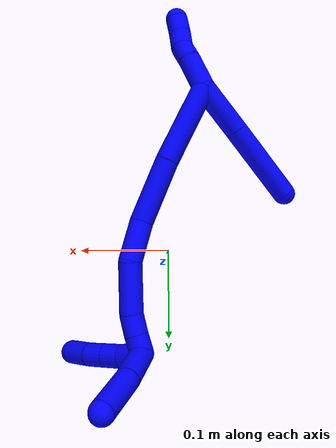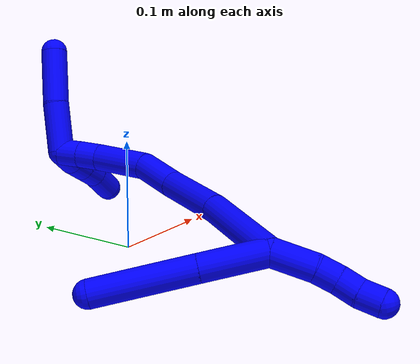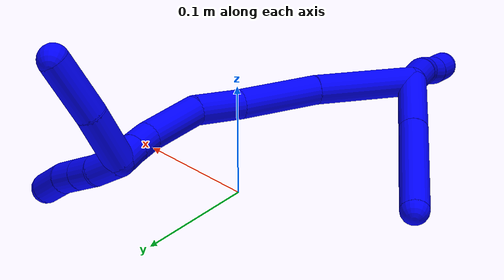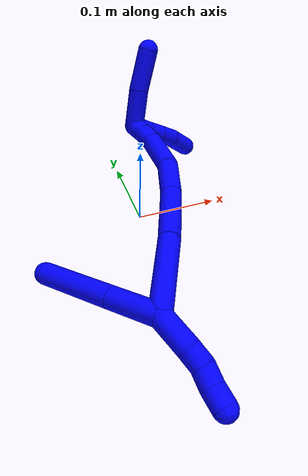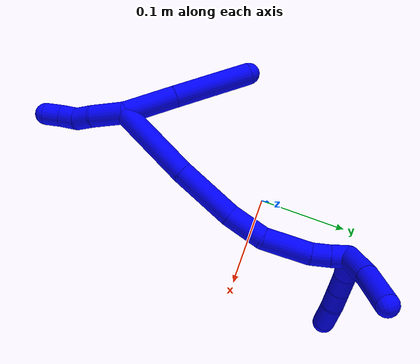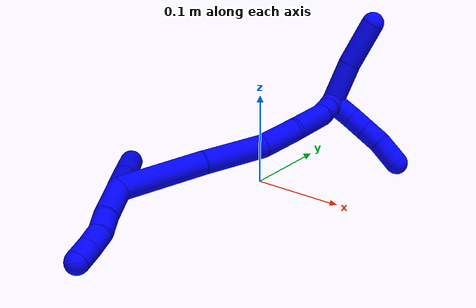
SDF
<sdf version="1.7">
 <world name="default">
  <model name="photoneo_s_sensor">
   <static>1</static>
   <pose>0 0 2 1.57079 1.57079 3.14159</pose>
   <link name="link">
    <inertial><mass>0.1</mass></inertial>
    <sensor name="sensor" type="depth">
     <update_rate>30</update_rate>
     <camera>
      <horizontal_fov>1.22</horizontal_fov>
      <image><width>1920</width><height>1200</height><format>B8G8R8</format></image>
      <clip><near>0.1</near><far>4</far></clip>
      <depth_camera><output>points</output></depth_camera>
     </camera>
     <plugin name="camera_plugin" filename="libgazebo_ros_depth_camera.so">
      <baseline>0.2</baseline>
      <alwaysOn>1</alwaysOn>
      <updateRate>0.0</updateRate>
      <cameraName>camera_ir</cameraName>
      <imageTopicName>/camera/color/image_raw</imageTopicName>
      <cameraInfoTopicName>/camera/color/camera_info</cameraInfoTopicName>
      <depthImageTopicName>/camera/depth/image_raw</depthImageTopicName>
      <depthImageCameraInfoTopicName>/camera/depth/camera_info</depthImageCameraInfoTopicName>
      <pointCloudTopicName>/camera/depth/points</pointCloudTopicName>
      <frameName>fr_optical</frameName>
      <pointCloudCutoff>0.1</pointCloudCutoff>
      <pointCloudCutoffMax>2.0</pointCloudCutoffMax>
      <distortionK1>0</distortionK1>
      <distortionK2>0</distortionK2>
      <distortionK3>0</distortionK3>
      <distortionT1>0</distortionT1>
      <distortionT2>0</distortionT2>
      <CxPrime>0</CxPrime>
      <Cx>0</Cx>
      <Cy>0</Cy>
      <focalLength>0</focalLength>
      <hackBaseline>0</hackBaseline>
     </plugin>
    </sensor>
   </link>
  </model>
  <model name="bin">
   <static>1</static>
   <link name="bottom">
    <collision name="collision-bottom">
     <pose>0 0 -0.01 0 -0 0</pose>
     <geometry><box><size>0.8 0.6 0.02</size></box></geometry>
     <surface>
      <friction><ode><mu>100</mu><mu2>100</mu2></ode></friction>
      <contact><collide_bitmask>65535</collide_bitmask></contact>
     </surface>
    </collision>
   </link>
   <link name="west_wall">
    <collision name="collision-west_wall">
     <pose>-0.41 0 0.1 0 -0 0</pose>
     <geometry><box><size>0.02 0.6 0.2</size></box></geometry>
     <surface>
      <friction><ode><mu>100</mu><mu2>100</mu2></ode></friction>
      <contact><collide_bitmask>65535</collide_bitmask></contact>
     </surface>
    </collision>
   </link>
   <link name="east_wall">
    <collision name="collision-east_wall">
     <pose>0.41 0 0.1 0 -0 0</pose>
     <geometry><box><size>0.02 0.6 0.2</size></box></geometry>
     <surface>
      <friction><ode><mu>100</mu><mu2>100</mu2></ode></friction>
      <contact><collide_bitmask>65535</collide_bitmask></contact>
     </surface>
    </collision>
   </link>
   <link name="south_wall">
    <collision name="collision-south_wall">
     <pose>0 -0.31 0.1 0 -0 0</pose>
     <geometry><box><size>0.8 0.02 0.2</size></box></geometry>
     <surface>
      <friction><ode><mu>100</mu><mu2>100</mu2></ode></friction>
      <contact><collide_bitmask>65535</collide_bitmask></contact>
     </surface>
    </collision>
   </link>
   <link name="north_wall">
    <collision name="collision-north_wall">
     <pose>0 0.31 0.1 0 -0 0</pose>
     <geometry><box><size>0.8 0.02 0.2</size></box></geometry>
     <surface>
      <friction><ode><mu>100</mu><mu2>100</mu2></ode></friction>
      <contact><collide_bitmask>65535</collide_bitmask></contact>
     </surface>
    </collision>
   </link>
  </model>
  <model name="1">
   <static>0</static>
   <link name="1">
    <collision name="collision-cylinder-e_1_2_8">
     <pose>-0.000724 -0.001752 -0.029352 3.08196 -0.024627 -0.78309</pose>
     <geometry><cylinder><radius>0.0125</radius><length>0.058827</length></cylinder></geometry>
     <surface>
      <friction><ode><mu>1.16</mu><mu2>1.16</mu2><slip1>0</slip1><slip2>0</slip2></ode></friction>
      <contact><ode><kp>1e+06</kp><kd>1</kd><max_vel>0</max_vel><min_depth>0.001</min_depth></ode></contact>
     </surface>
    </collision>
    <visual name="visual-cylinder-e_1_2_8">
     <pose>-0.000724 -0.001752 -0.029352 3.08196 -0.024627 -0.78309</pose>
     <geometry><cylinder><radius>0.0125</radius><length>0.058827</length></cylinder></geometry>
     <material><ambient>0 0 1 1</ambient></material>
    </visual>
    <collision name="collision-cylinder-e_2_8_6">
     <pose>-0.002132 -0.006192 -0.104207 3.0826 -0.014995 -0.497709</pose>
     <geometry><cylinder><radius>0.0125</radius><length>0.091173</length></cylinder></geometry>
     <surface>
      <friction><ode><mu>1.16</mu><mu2>1.16</mu2><slip1>0</slip1><slip2>0</slip2></ode></friction>
      <contact><ode><kp>1e+06</kp><kd>1</kd><max_vel>0</max_vel><min_depth>0.001</min_depth></ode></contact>
     </surface>
    </collision>
    <visual name="visual-cylinder-e_2_8_6">
     <pose>-0.002132 -0.006192 -0.104207 3.0826 -0.014995 -0.497709</pose>
     <geometry><cylinder><radius>0.0125</radius><length>0.091173</length></cylinder></geometry>
     <material><ambient>0 0 1 1</ambient></material>
    </visual>
    <collision name="collision-cylinder-e_1_2_9">
     <pose>0.00265 -0.009238 0.016943 0.499201 0.136447 0.034833</pose>
     <geometry><cylinder><radius>0.0125</radius><length>0.038957</length></cylinder></geometry>
     <surface>
      <friction><ode><mu>1.16</mu><mu2>1.16</mu2><slip1>0</slip1><slip2>0</slip2></ode></friction>
      <contact><ode><kp>1e+06</kp><kd>1</kd><max_vel>0</max_vel><min_depth>0.001</min_depth></ode></contact>
     </surface>
    </collision>
    <visual name="visual-cylinder-e_1_2_9">
     <pose>0.00265 -0.009238 0.016943 0.499201 0.136447 0.034833</pose>
     <geometry><cylinder><radius>0.0125</radius><length>0.038957</length></cylinder></geometry>
     <material><ambient>0 0 1 1</ambient></material>
    </visual>
    <collision name="collision-cylinder-e_2_9_10">
     <pose>0.007979 -0.024075 0.041832 0.613731 0.269005 0.085706</pose>
     <geometry><cylinder><radius>0.0125</radius><length>0.020168</length></cylinder></geometry>
     <surface>
      <friction><ode><mu>1.16</mu><mu2>1.16</mu2><slip1>0</slip1><slip2>0</slip2></ode></friction>
      <contact><ode><kp>1e+06</kp><kd>1</kd><max_vel>0</max_vel><min_depth>0.001</min_depth></ode></contact>
     </surface>
    </collision>
    <visual name="visual-cylinder-e_2_9_10">
     <pose>0.007979 -0.024075 0.041832 0.613731 0.269005 0.085706</pose>
     <geometry><cylinder><radius>0.0125</radius><length>0.020168</length></cylinder></geometry>
     <material><ambient>0 0 1 1</ambient></material>
    </visual>
    <collision name="collision-cylinder-e_3_10_11">
     <pose>0.010726 -0.036708 0.056968 0.77456 0.006633 0.002706</pose>
     <geometry><cylinder><radius>0.0125</radius><length>0.020116</length></cylinder></geometry>
     <surface>
      <friction><ode><mu>1.16</mu><mu2>1.16</mu2><slip1>0</slip1><slip2>0</slip2></ode></friction>
      <contact><ode><kp>1e+06</kp><kd>1</kd><max_vel>0</max_vel><min_depth>0.001</min_depth></ode></contact>
     </surface>
    </collision>
    <visual name="visual-cylinder-e_3_10_11">
     <pose>0.010726 -0.036708 0.056968 0.77456 0.006633 0.002706</pose>
     <geometry><cylinder><radius>0.0125</radius><length>0.020116</length></cylinder></geometry>
     <material><ambient>0 0 1 1</ambient></material>
    </visual>
    <collision name="collision-cylinder-e_4_11_5">
     <pose>0.010227 -0.049651 0.072672 0.6066 -0.054572 -0.017083</pose>
     <geometry><cylinder><radius>0.0125</radius><length>0.020759</length></cylinder></geometry>
     <surface>
      <friction><ode><mu>1.16</mu><mu2>1.16</mu2><slip1>0</slip1><slip2>0</slip2></ode></friction>
      <contact><ode><kp>1e+06</kp><kd>1</kd><max_vel>0</max_vel><min_depth>0.001</min_depth></ode></contact>
     </surface>
    </collision>
    <visual name="visual-cylinder-e_4_11_5">
     <pose>0.010227 -0.049651 0.072672 0.6066 -0.054572 -0.017083</pose>
     <geometry><cylinder><radius>0.0125</radius><length>0.020759</length></cylinder></geometry>
     <material><ambient>0 0 1 1</ambient></material>
    </visual>
    <collision name="collision-cylinder-e_1_2_12">
     <pose>0.025167 0.032637 -0.019979 -2.12011 0.581748 -0.981359</pose>
     <geometry><cylinder><radius>0.0125</radius><length>0.091602</length></cylinder></geometry>
     <surface>
      <friction><ode><mu>1.16</mu><mu2>1.16</mu2><slip1>0</slip1><slip2>0</slip2></ode></friction>
      <contact><ode><kp>1e+06</kp><kd>1</kd><max_vel>0</max_vel><min_depth>0.001</min_depth></ode></contact>
     </surface>
    </collision>
    <visual name="visual-cylinder-e_1_2_12">
     <pose>0.025167 0.032637 -0.019979 -2.12011 0.581748 -0.981359</pose>
     <geometry><cylinder><radius>0.0125</radius><length>0.091602</length></cylinder></geometry>
     <material><ambient>0 0 1 1</ambient></material>
    </visual>
    <collision name="collision-cylinder-e_2_12_13">
     <pose>0.070073 0.088241 -0.057796 -2.23114 0.596349 -1.12128</pose>
     <geometry><cylinder><radius>0.0125</radius><length>0.070292</length></cylinder></geometry>
     <surface>
      <friction><ode><mu>1.16</mu><mu2>1.16</mu2><slip1>0</slip1><slip2>0</slip2></ode></friction>
      <contact><ode><kp>1e+06</kp><kd>1</kd><max_vel>0</max_vel><min_depth>0.001</min_depth></ode></contact>
     </surface>
    </collision>
    <visual name="visual-cylinder-e_2_12_13">
     <pose>0.070073 0.088241 -0.057796 -2.23114 0.596349 -1.12128</pose>
     <geometry><cylinder><radius>0.0125</radius><length>0.070292</length></cylinder></geometry>
     <material><ambient>0 0 1 1</ambient></material>
    </visual>
    <collision name="collision-cylinder-e_3_13_14">
     <pose>0.098523 0.126734 -0.08812 -2.24811 0.412175 -0.822983</pose>
     <geometry><cylinder><radius>0.0125</radius><length>0.043491</length></cylinder></geometry>
     <surface>
      <friction><ode><mu>1.16</mu><mu2>1.16</mu2><slip1>0</slip1><slip2>0</slip2></ode></friction>
      <contact><ode><kp>1e+06</kp><kd>1</kd><max_vel>0</max_vel><min_depth>0.001</min_depth></ode></contact>
     </surface>
    </collision>
    <visual name="visual-cylinder-e_3_13_14">
     <pose>0.098523 0.126734 -0.08812 -2.24811 0.412175 -0.822983</pose>
     <geometry><cylinder><radius>0.0125</radius><length>0.043491</length></cylinder></geometry>
     <material><ambient>0 0 1 1</ambient></material>
    </visual>
    <collision name="collision-cylinder-e_4_14_15">
     <pose>0.116143 0.1551 -0.122303 -2.60724 0.339654 -1.11931</pose>
     <geometry><cylinder><radius>0.0125</radius><length>0.053479</length></cylinder></geometry>
     <surface>
      <friction><ode><mu>1.16</mu><mu2>1.16</mu2><slip1>0</slip1><slip2>0</slip2></ode></friction>
      <contact><ode><kp>1e+06</kp><kd>1</kd><max_vel>0</max_vel><min_depth>0.001</min_depth></ode></contact>
     </surface>
    </collision>
    <visual name="visual-cylinder-e_4_14_15">
     <pose>0.116143 0.1551 -0.122303 -2.60724 0.339654 -1.11931</pose>
     <geometry><cylinder><radius>0.0125</radius><length>0.053479</length></cylinder></geometry>
     <material><ambient>0 0 1 1</ambient></material>
    </visual>
    <collision name="collision-cylinder-e_5_15_16">
     <pose>0.126665 0.17223 -0.153511 -2.71786 0.153444 -0.686488</pose>
     <geometry><cylinder><radius>0.0125</radius><length>0.021114</length></cylinder></geometry>
     <surface>
      <friction><ode><mu>1.16</mu><mu2>1.16</mu2><slip1>0</slip1><slip2>0</slip2></ode></friction>
      <contact><ode><kp>1e+06</kp><kd>1</kd><max_vel>0</max_vel><min_depth>0.001</min_depth></ode></contact>
     </surface>
    </collision>
    <visual name="visual-cylinder-e_5_15_16">
     <pose>0.126665 0.17223 -0.153511 -2.71786 0.153444 -0.686488</pose>
     <geometry><cylinder><radius>0.0125</radius><length>0.021114</length></cylinder></geometry>
     <material><ambient>0 0 1 1</ambient></material>
    </visual>
    <collision name="collision-cylinder-e_6_16_1">
     <pose>0.129422 0.180156 -0.172277 -2.76722 0.114432 -0.587342</pose>
     <geometry><cylinder><radius>0.0125</radius><length>0.020022</length></cylinder></geometry>
     <surface>
      <friction><ode><mu>1.16</mu><mu2>1.16</mu2><slip1>0</slip1><slip2>0</slip2></ode></friction>
      <contact><ode><kp>1e+06</kp><kd>1</kd><max_vel>0</max_vel><min_depth>0.001</min_depth></ode></contact>
     </surface>
    </collision>
    <visual name="visual-cylinder-e_6_16_1">
     <pose>0.129422 0.180156 -0.172277 -2.76722 0.114432 -0.587342</pose>
     <geometry><cylinder><radius>0.0125</radius><length>0.020022</length></cylinder></geometry>
     <material><ambient>0 0 1 1</ambient></material>
    </visual>
    <collision name="collision-cylinder-e_1_1_17">
     <pose>0.123494 0.206609 -0.180233 -1.51386 -0.30008 0.28369</pose>
     <geometry><cylinder><radius>0.0125</radius><length>0.047843</length></cylinder></geometry>
     <surface>
      <friction><ode><mu>1.16</mu><mu2>1.16</mu2><slip1>0</slip1><slip2>0</slip2></ode></friction>
      <contact><ode><kp>1e+06</kp><kd>1</kd><max_vel>0</max_vel><min_depth>0.001</min_depth></ode></contact>
     </surface>
    </collision>
    <visual name="visual-cylinder-e_1_1_17">
     <pose>0.123494 0.206609 -0.180233 -1.51386 -0.30008 0.28369</pose>
     <geometry><cylinder><radius>0.0125</radius><length>0.047843</length></cylinder></geometry>
     <material><ambient>0 0 1 1</ambient></material>
    </visual>
    <collision name="collision-cylinder-e_2_17_4">
     <pose>0.11127 0.254826 -0.176055 -1.45799 -0.198886 0.177745</pose>
     <geometry><cylinder><radius>0.0125</radius><length>0.052157</length></cylinder></geometry>
     <surface>
      <friction><ode><mu>1.16</mu><mu2>1.16</mu2><slip1>0</slip1><slip2>0</slip2></ode></friction>
      <contact><ode><kp>1e+06</kp><kd>1</kd><max_vel>0</max_vel><min_depth>0.001</min_depth></ode></contact>
     </surface>
    </collision>
    <visual name="visual-cylinder-e_2_17_4">
     <pose>0.11127 0.254826 -0.176055 -1.45799 -0.198886 0.177745</pose>
     <geometry><cylinder><radius>0.0125</radius><length>0.052157</length></cylinder></geometry>
     <material><ambient>0 0 1 1</ambient></material>
    </visual>
    <collision name="collision-cylinder-e_1_1_18">
     <pose>0.143857 0.184051 -0.17926 -0.113062 1.40028 -0.095287</pose>
     <geometry><cylinder><radius>0.0125</radius><length>0.026976</length></cylinder></geometry>
     <surface>
      <friction><ode><mu>1.16</mu><mu2>1.16</mu2><slip1>0</slip1><slip2>0</slip2></ode></friction>
      <contact><ode><kp>1e+06</kp><kd>1</kd><max_vel>0</max_vel><min_depth>0.001</min_depth></ode></contact>
     </surface>
    </collision>
    <visual name="visual-cylinder-e_1_1_18">
     <pose>0.143857 0.184051 -0.17926 -0.113062 1.40028 -0.095287</pose>
     <geometry><cylinder><radius>0.0125</radius><length>0.026976</length></cylinder></geometry>
     <material><ambient>0 0 1 1</ambient></material>
    </visual>
    <collision name="collision-cylinder-e_2_18_19">
     <pose>0.167219 0.18431 -0.173236 2.8e-05 1.21429 2e-05</pose>
     <geometry><cylinder><radius>0.0125</radius><length>0.021489</length></cylinder></geometry>
     <surface>
      <friction><ode><mu>1.16</mu><mu2>1.16</mu2><slip1>0</slip1><slip2>0</slip2></ode></friction>
      <contact><ode><kp>1e+06</kp><kd>1</kd><max_vel>0</max_vel><min_depth>0.001</min_depth></ode></contact>
     </surface>
    </collision>
    <visual name="visual-cylinder-e_2_18_19">
     <pose>0.167219 0.18431 -0.173236 2.8e-05 1.21429 2e-05</pose>
     <geometry><cylinder><radius>0.0125</radius><length>0.021489</length></cylinder></geometry>
     <material><ambient>0 0 1 1</ambient></material>
    </visual>
    <collision name="collision-cylinder-e_3_19_20">
     <pose>0.187546 0.184299 -0.16571 0.002816 1.2181 0.001964</pose>
     <geometry><cylinder><radius>0.0125</radius><length>0.021862</length></cylinder></geometry>
     <surface>
      <friction><ode><mu>1.16</mu><mu2>1.16</mu2><slip1>0</slip1><slip2>0</slip2></ode></friction>
      <contact><ode><kp>1e+06</kp><kd>1</kd><max_vel>0</max_vel><min_depth>0.001</min_depth></ode></contact>
     </surface>
    </collision>
    <visual name="visual-cylinder-e_3_19_20">
     <pose>0.187546 0.184299 -0.16571 0.002816 1.2181 0.001964</pose>
     <geometry><cylinder><radius>0.0125</radius><length>0.021862</length></cylinder></geometry>
     <material><ambient>0 0 1 1</ambient></material>
    </visual>
    <collision name="collision-cylinder-e_4_20_3">
     <pose>0.211837 0.181894 -0.157754 0.520137 1.24012 0.375508</pose>
     <geometry><cylinder><radius>0.0125</radius><length>0.029673</length></cylinder></geometry>
     <surface>
      <friction><ode><mu>1.16</mu><mu2>1.16</mu2><slip1>0</slip1><slip2>0</slip2></ode></friction>
      <contact><ode><kp>1e+06</kp><kd>1</kd><max_vel>0</max_vel><min_depth>0.001</min_depth></ode></contact>
     </surface>
    </collision>
    <visual name="visual-cylinder-e_4_20_3">
     <pose>0.211837 0.181894 -0.157754 0.520137 1.24012 0.375508</pose>
     <geometry><cylinder><radius>0.0125</radius><length>0.029673</length></cylinder></geometry>
     <material><ambient>0 0 1 1</ambient></material>
    </visual>
    <collision name="collision-sphere-3">
     <pose>0.225869 0.1795 -0.153574 0 -0 0</pose>
     <geometry><sphere><radius>0.0125</radius></sphere></geometry>
     <surface>
      <friction><ode><mu>1.16</mu><mu2>1.16</mu2><slip1>0</slip1><slip2>0</slip2></ode></friction>
      <contact><ode><kp>1e+06</kp><kd>1</kd><max_vel>0</max_vel><min_depth>0.001</min_depth></ode></contact>
     </surface>
    </collision>
    <visual name="visual-sphere-3">
     <pose>0.225869 0.1795 -0.153574 0 -0 0</pose>
     <geometry><sphere><radius>0.0125</radius></sphere></geometry>
     <material><ambient>0 0 1 1</ambient></material>
    </visual>
    <collision name="collision-sphere-20">
     <pose>0.197804 0.184288 -0.161934 0 -0 0</pose>
     <geometry><sphere><radius>0.0125</radius></sphere></geometry>
     <surface>
      <friction><ode><mu>1.16</mu><mu2>1.16</mu2><slip1>0</slip1><slip2>0</slip2></ode></friction>
      <contact><ode><kp>1e+06</kp><kd>1</kd><max_vel>0</max_vel><min_depth>0.001</min_depth></ode></contact>
     </surface>
    </collision>
    <visual name="visual-sphere-20">
     <pose>0.197804 0.184288 -0.161934 0 -0 0</pose>
     <geometry><sphere><radius>0.0125</radius></sphere></geometry>
     <material><ambient>0 0 1 1</ambient></material>
    </visual>
    <collision name="collision-sphere-19">
     <pose>0.177287 0.184309 -0.169486 0 -0 0</pose>
     <geometry><sphere><radius>0.0125</radius></sphere></geometry>
     <surface>
      <friction><ode><mu>1.16</mu><mu2>1.16</mu2><slip1>0</slip1><slip2>0</slip2></ode></friction>
      <contact><ode><kp>1e+06</kp><kd>1</kd><max_vel>0</max_vel><min_depth>0.001</min_depth></ode></contact>
     </surface>
    </collision>
    <visual name="visual-sphere-19">
     <pose>0.177287 0.184309 -0.169486 0 -0 0</pose>
     <geometry><sphere><radius>0.0125</radius></sphere></geometry>
     <material><ambient>0 0 1 1</ambient></material>
    </visual>
    <collision name="collision-sphere-11">
     <pose>0.010793 -0.043743 0.064157 0 -0 0</pose>
     <geometry><sphere><radius>0.0125</radius></sphere></geometry>
     <surface>
      <friction><ode><mu>1.16</mu><mu2>1.16</mu2><slip1>0</slip1><slip2>0</slip2></ode></friction>
      <contact><ode><kp>1e+06</kp><kd>1</kd><max_vel>0</max_vel><min_depth>0.001</min_depth></ode></contact>
     </surface>
    </collision>
    <visual name="visual-sphere-11">
     <pose>0.010793 -0.043743 0.064157 0 -0 0</pose>
     <geometry><sphere><radius>0.0125</radius></sphere></geometry>
     <material><ambient>0 0 1 1</ambient></material>
    </visual>
    <collision name="collision-sphere-10">
     <pose>0.010659 -0.029674 0.04978 0 -0 0</pose>
     <geometry><sphere><radius>0.0125</radius></sphere></geometry>
     <surface>
      <friction><ode><mu>1.16</mu><mu2>1.16</mu2><slip1>0</slip1><slip2>0</slip2></ode></friction>
      <contact><ode><kp>1e+06</kp><kd>1</kd><max_vel>0</max_vel><min_depth>0.001</min_depth></ode></contact>
     </surface>
    </collision>
    <visual name="visual-sphere-10">
     <pose>0.010659 -0.029674 0.04978 0 -0 0</pose>
     <geometry><sphere><radius>0.0125</radius></sphere></geometry>
     <material><ambient>0 0 1 1</ambient></material>
    </visual>
    <collision name="collision-sphere-6">
     <pose>-0.002816 -0.00888 -0.149709 0 -0 0</pose>
     <geometry><sphere><radius>0.0125</radius></sphere></geometry>
     <surface>
      <friction><ode><mu>1.16</mu><mu2>1.16</mu2><slip1>0</slip1><slip2>0</slip2></ode></friction>
      <contact><ode><kp>1e+06</kp><kd>1</kd><max_vel>0</max_vel><min_depth>0.001</min_depth></ode></contact>
     </surface>
    </collision>
    <visual name="visual-sphere-6">
     <pose>-0.002816 -0.00888 -0.149709 0 -0 0</pose>
     <geometry><sphere><radius>0.0125</radius></sphere></geometry>
     <material><ambient>0 0 1 1</ambient></material>
    </visual>
    <collision name="collision-sphere-9">
     <pose>0.005299 -0.018476 0.033885 0 -0 0</pose>
     <geometry><sphere><radius>0.0125</radius></sphere></geometry>
     <surface>
      <friction><ode><mu>1.16</mu><mu2>1.16</mu2><slip1>0</slip1><slip2>0</slip2></ode></friction>
      <contact><ode><kp>1e+06</kp><kd>1</kd><max_vel>0</max_vel><min_depth>0.001</min_depth></ode></contact>
     </surface>
    </collision>
    <visual name="visual-sphere-9">
     <pose>0.005299 -0.018476 0.033885 0 -0 0</pose>
     <geometry><sphere><radius>0.0125</radius></sphere></geometry>
     <material><ambient>0 0 1 1</ambient></material>
    </visual>
    <collision name="collision-sphere-2">
     <geometry><sphere><radius>0.0125</radius></sphere></geometry>
     <surface>
      <friction><ode><mu>1.16</mu><mu2>1.16</mu2><slip1>0</slip1><slip2>0</slip2></ode></friction>
      <contact><ode><kp>1e+06</kp><kd>1</kd><max_vel>0</max_vel><min_depth>0.001</min_depth></ode></contact>
     </surface>
    </collision>
    <visual name="visual-sphere-2">
     <geometry><sphere><radius>0.0125</radius></sphere></geometry>
     <material><ambient>0 0 1 1</ambient></material>
    </visual>
    <collision name="collision-sphere-8">
     <pose>-0.001449 -0.003505 -0.058705 0 -0 0</pose>
     <geometry><sphere><radius>0.0125</radius></sphere></geometry>
     <surface>
      <friction><ode><mu>1.16</mu><mu2>1.16</mu2><slip1>0</slip1><slip2>0</slip2></ode></friction>
      <contact><ode><kp>1e+06</kp><kd>1</kd><max_vel>0</max_vel><min_depth>0.001</min_depth></ode></contact>
     </surface>
    </collision>
    <visual name="visual-sphere-8">
     <pose>-0.001449 -0.003505 -0.058705 0 -0 0</pose>
     <geometry><sphere><radius>0.0125</radius></sphere></geometry>
     <material><ambient>0 0 1 1</ambient></material>
    </visual>
    <collision name="collision-sphere-5">
     <pose>0.00966 -0.055559 0.081187 0 -0 0</pose>
     <geometry><sphere><radius>0.0125</radius></sphere></geometry>
     <surface>
      <friction><ode><mu>1.16</mu><mu2>1.16</mu2><slip1>0</slip1><slip2>0</slip2></ode></friction>
      <contact><ode><kp>1e+06</kp><kd>1</kd><max_vel>0</max_vel><min_depth>0.001</min_depth></ode></contact>
     </surface>
    </collision>
    <visual name="visual-sphere-5">
     <pose>0.00966 -0.055559 0.081187 0 -0 0</pose>
     <geometry><sphere><radius>0.0125</radius></sphere></geometry>
     <material><ambient>0 0 1 1</ambient></material>
    </visual>
    <collision name="collision-sphere-12">
     <pose>0.050334 0.065275 -0.039958 0 -0 0</pose>
     <geometry><sphere><radius>0.0125</radius></sphere></geometry>
     <surface>
      <friction><ode><mu>1.16</mu><mu2>1.16</mu2><slip1>0</slip1><slip2>0</slip2></ode></friction>
      <contact><ode><kp>1e+06</kp><kd>1</kd><max_vel>0</max_vel><min_depth>0.001</min_depth></ode></contact>
     </surface>
    </collision>
    <visual name="visual-sphere-12">
     <pose>0.050334 0.065275 -0.039958 0 -0 0</pose>
     <geometry><sphere><radius>0.0125</radius></sphere></geometry>
     <material><ambient>0 0 1 1</ambient></material>
    </visual>
    <collision name="collision-sphere-13">
     <pose>0.089812 0.111208 -0.075633 0 -0 0</pose>
     <geometry><sphere><radius>0.0125</radius></sphere></geometry>
     <surface>
      <friction><ode><mu>1.16</mu><mu2>1.16</mu2><slip1>0</slip1><slip2>0</slip2></ode></friction>
      <contact><ode><kp>1e+06</kp><kd>1</kd><max_vel>0</max_vel><min_depth>0.001</min_depth></ode></contact>
     </surface>
    </collision>
    <visual name="visual-sphere-13">
     <pose>0.089812 0.111208 -0.075633 0 -0 0</pose>
     <geometry><sphere><radius>0.0125</radius></sphere></geometry>
     <material><ambient>0 0 1 1</ambient></material>
    </visual>
    <collision name="collision-sphere-14">
     <pose>0.107235 0.14226 -0.100606 0 -0 0</pose>
     <geometry><sphere><radius>0.0125</radius></sphere></geometry>
     <surface>
      <friction><ode><mu>1.16</mu><mu2>1.16</mu2><slip1>0</slip1><slip2>0</slip2></ode></friction>
      <contact><ode><kp>1e+06</kp><kd>1</kd><max_vel>0</max_vel><min_depth>0.001</min_depth></ode></contact>
     </surface>
    </collision>
    <visual name="visual-sphere-14">
     <pose>0.107235 0.14226 -0.100606 0 -0 0</pose>
     <geometry><sphere><radius>0.0125</radius></sphere></geometry>
     <material><ambient>0 0 1 1</ambient></material>
    </visual>
    <collision name="collision-sphere-15">
     <pose>0.125052 0.16794 -0.144001 0 -0 0</pose>
     <geometry><sphere><radius>0.0125</radius></sphere></geometry>
     <surface>
      <friction><ode><mu>1.16</mu><mu2>1.16</mu2><slip1>0</slip1><slip2>0</slip2></ode></friction>
      <contact><ode><kp>1e+06</kp><kd>1</kd><max_vel>0</max_vel><min_depth>0.001</min_depth></ode></contact>
     </surface>
    </collision>
    <visual name="visual-sphere-15">
     <pose>0.125052 0.16794 -0.144001 0 -0 0</pose>
     <geometry><sphere><radius>0.0125</radius></sphere></geometry>
     <material><ambient>0 0 1 1</ambient></material>
    </visual>
    <collision name="collision-sphere-16">
     <pose>0.128279 0.176519 -0.163021 0 -0 0</pose>
     <geometry><sphere><radius>0.0125</radius></sphere></geometry>
     <surface>
      <friction><ode><mu>1.16</mu><mu2>1.16</mu2><slip1>0</slip1><slip2>0</slip2></ode></friction>
      <contact><ode><kp>1e+06</kp><kd>1</kd><max_vel>0</max_vel><min_depth>0.001</min_depth></ode></contact>
     </surface>
    </collision>
    <visual name="visual-sphere-16">
     <pose>0.128279 0.176519 -0.163021 0 -0 0</pose>
     <geometry><sphere><radius>0.0125</radius></sphere></geometry>
     <material><ambient>0 0 1 1</ambient></material>
    </visual>
    <collision name="collision-sphere-1">
     <pose>0.130565 0.183793 -0.181534 0 -0 0</pose>
     <geometry><sphere><radius>0.0125</radius></sphere></geometry>
     <surface>
      <friction><ode><mu>1.16</mu><mu2>1.16</mu2><slip1>0</slip1><slip2>0</slip2></ode></friction>
      <contact><ode><kp>1e+06</kp><kd>1</kd><max_vel>0</max_vel><min_depth>0.001</min_depth></ode></contact>
     </surface>
    </collision>
    <visual name="visual-sphere-1">
     <pose>0.130565 0.183793 -0.181534 0 -0 0</pose>
     <geometry><sphere><radius>0.0125</radius></sphere></geometry>
     <material><ambient>0 0 1 1</ambient></material>
    </visual>
    <collision name="collision-sphere-18">
     <pose>0.15715 0.18431 -0.176986 0 -0 0</pose>
     <geometry><sphere><radius>0.0125</radius></sphere></geometry>
     <surface>
      <friction><ode><mu>1.16</mu><mu2>1.16</mu2><slip1>0</slip1><slip2>0</slip2></ode></friction>
      <contact><ode><kp>1e+06</kp><kd>1</kd><max_vel>0</max_vel><min_depth>0.001</min_depth></ode></contact>
     </surface>
    </collision>
    <visual name="visual-sphere-18">
     <pose>0.15715 0.18431 -0.176986 0 -0 0</pose>
     <geometry><sphere><radius>0.0125</radius></sphere></geometry>
     <material><ambient>0 0 1 1</ambient></material>
    </visual>
    <collision name="collision-sphere-17">
     <pose>0.116423 0.229424 -0.178933 0 -0 0</pose>
     <geometry><sphere><radius>0.0125</radius></sphere></geometry>
     <surface>
      <friction><ode><mu>1.16</mu><mu2>1.16</mu2><slip1>0</slip1><slip2>0</slip2></ode></friction>
      <contact><ode><kp>1e+06</kp><kd>1</kd><max_vel>0</max_vel><min_depth>0.001</min_depth></ode></contact>
     </surface>
    </collision>
    <visual name="visual-sphere-17">
     <pose>0.116423 0.229424 -0.178933 0 -0 0</pose>
     <geometry><sphere><radius>0.0125</radius></sphere></geometry>
     <material><ambient>0 0 1 1</ambient></material>
    </visual>
    <collision name="collision-sphere-4">
     <pose>0.106118 0.280228 -0.173177 0 -0 0</pose>
     <geometry><sphere><radius>0.0125</radius></sphere></geometry>
     <surface>
      <friction><ode><mu>1.16</mu><mu2>1.16</mu2><slip1>0</slip1><slip2>0</slip2></ode></friction>
      <contact><ode><kp>1e+06</kp><kd>1</kd><max_vel>0</max_vel><min_depth>0.001</min_depth></ode></contact>
     </surface>
    </collision>
    <visual name="visual-sphere-4">
     <pose>0.106118 0.280228 -0.173177 0 -0 0</pose>
     <geometry><sphere><radius>0.0125</radius></sphere></geometry>
     <material><ambient>0 0 1 1</ambient></material>
    </visual>
    <inertial>
     <pose>0.070693 0.091317 -0.086258 0 -0 0</pose>
     <mass>0.75</mass>
     <inertia>
      <ixx>5.2e-05</ixx>
      <ixy>0</ixy>
      <ixz>0</ixz>
      <iyy>-0.00016</iyy>
      <iyz>0</iyz>
      <izz>-0.000179</izz>
     </inertia>
    </inertial>
   </link>
   <pose>-0.040324 -0.178057 0.044527 1.32925 0.672241 0.468318</pose>
  </model>
 </world>
</sdf>
